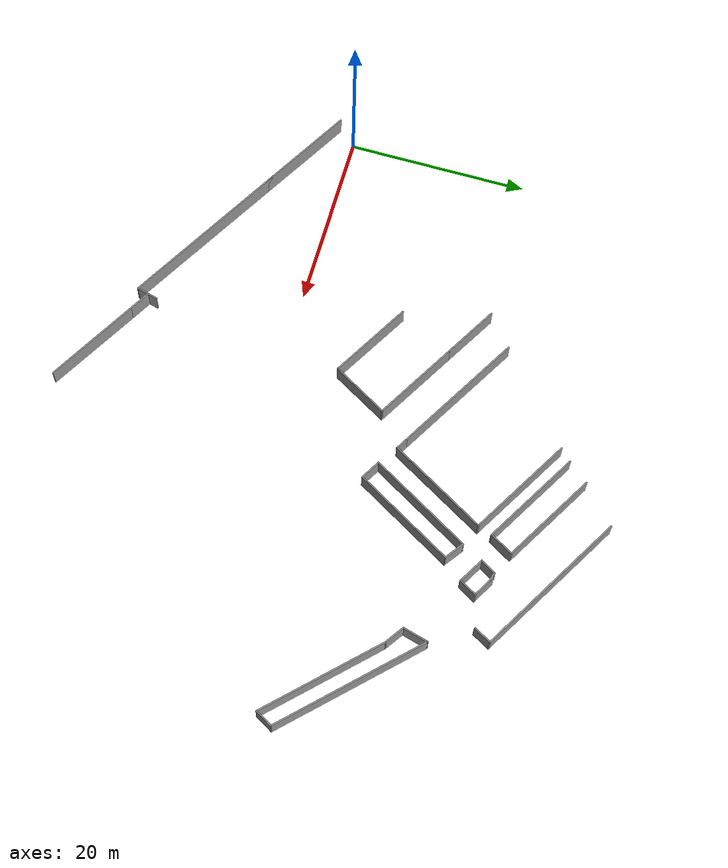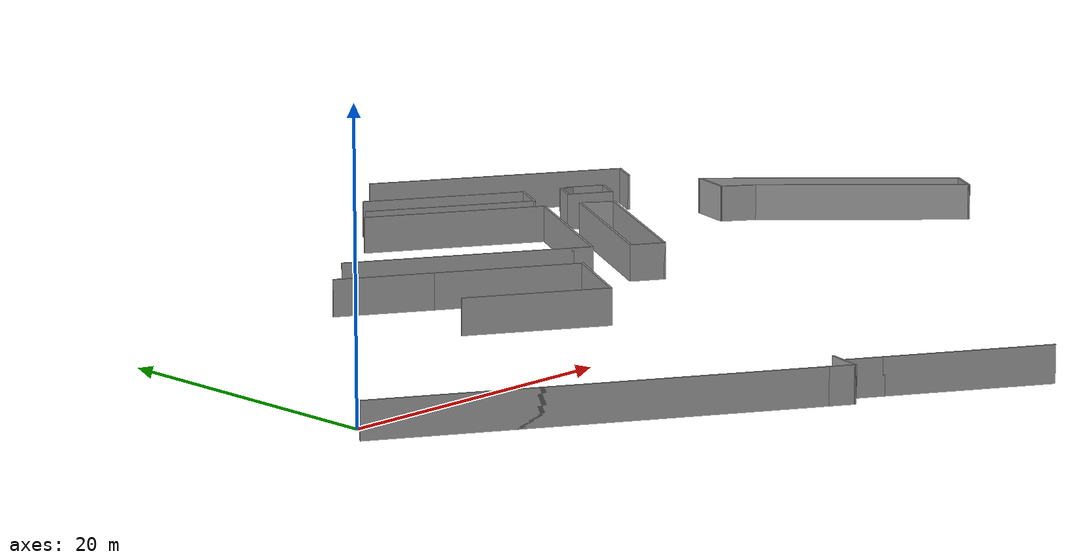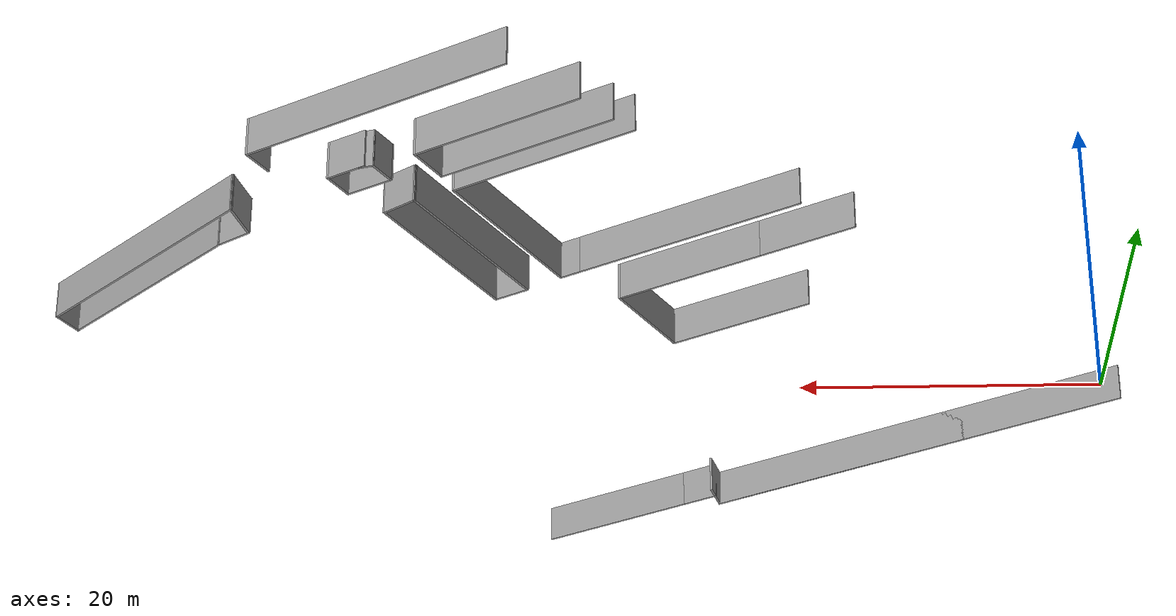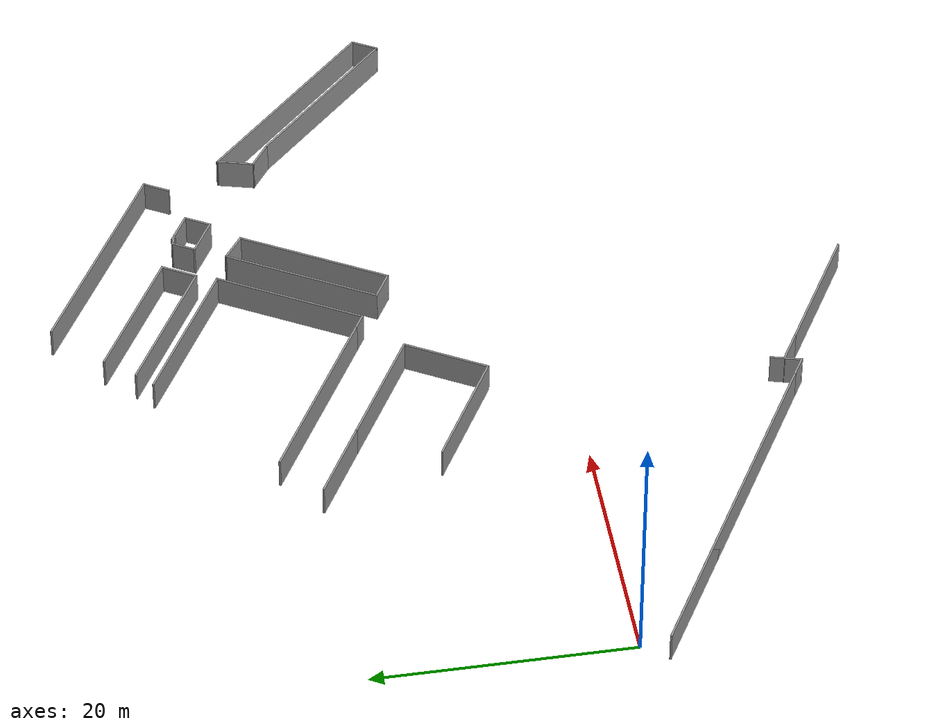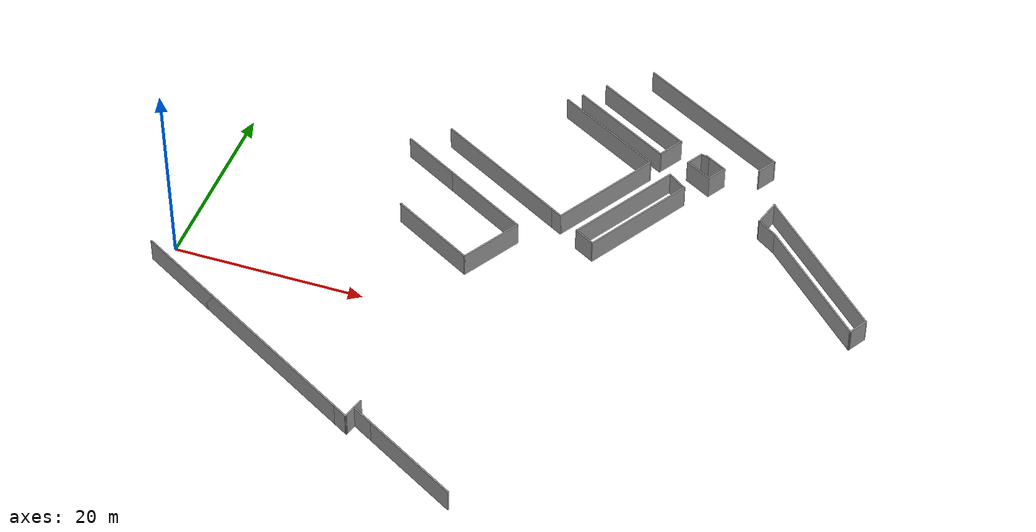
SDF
<?xml version='1.0'?>
<sdf version='1.6'>
  <model name='CS2'>
    <pose frame=''>33.1842 7.91555 0 0 -0 0</pose>
    <link name='Wall_101'>
      <collision name='Wall_101_Collision'>
        <geometry>
          <box>
            <size>11.25 0.15 2.5</size>
          </box>
        </geometry>
        <pose frame=''>0 0 1.25 0 -0 0</pose>
      </collision>
      <visual name='Wall_101_Visual'>
        <pose frame=''>0 0 1.25 0 -0 0</pose>
        <geometry>
          <box>
            <size>11.25 0.15 2.5</size>
          </box>
        </geometry>
        <material>
          <script>
            <uri>file://media/materials/scripts/gazebo.material</uri>
            <name>Gazebo/Grey</name>
          </script>
          <ambient>1 1 1 1</ambient>
        </material>
        <meta>
          <layer>0</layer>
        </meta>
      </visual>
      <pose frame=''>-0.55685 -28.1163 0 0 -0 -0.523599</pose>
    </link>
    <link name='Wall_103'>
      <collision name='Wall_103_Collision'>
        <geometry>
          <box>
            <size>2.75 0.15 2.5</size>
          </box>
        </geometry>
        <pose frame=''>0 0 1.25 0 -0 0</pose>
      </collision>
      <visual name='Wall_103_Visual'>
        <pose frame=''>0 0 1.25 0 -0 0</pose>
        <geometry>
          <box>
            <size>2.75 0.15 2.5</size>
          </box>
        </geometry>
        <material>
          <script>
            <uri>file://media/materials/scripts/gazebo.material</uri>
            <name>Gazebo/Grey</name>
          </script>
          <ambient>1 1 1 1</ambient>
        </material>
        <meta>
          <layer>0</layer>
        </meta>
      </visual>
      <pose frame=''>-6.48913 -24.6913 0 0 -0 2.61799</pose>
    </link>
    <link name='Wall_108'>
      <collision name='Wall_108_Collision'>
        <geometry>
          <box>
            <size>29.25 0.15 2.5</size>
          </box>
        </geometry>
        <pose frame=''>0 0 1.25 0 -0 0</pose>
      </collision>
      <visual name='Wall_108_Visual'>
        <pose frame=''>0 0 1.25 0 -0 0</pose>
        <geometry>
          <box>
            <size>29.25 0.15 2.5</size>
          </box>
        </geometry>
        <material>
          <script>
            <uri>file://media/materials/scripts/gazebo.material</uri>
            <name>Gazebo/Grey</name>
          </script>
          <ambient>1 1 1 1</ambient>
        </material>
        <meta>
          <layer>0</layer>
        </meta>
      </visual>
      <pose frame=''>-22.0792 -17.1668 0 0 -0 2.61799</pose>
    </link>
    <link name='Wall_109'>
      <collision name='Wall_109_Collision'>
        <geometry>
          <box>
            <size>31 0.15 2.5</size>
          </box>
        </geometry>
        <pose frame=''>0 0 1.25 0 -0 0</pose>
      </collision>
      <visual name='Wall_109_Visual'>
        <pose frame=''>0 0 1.25 0 -0 0</pose>
        <geometry>
          <box>
            <size>31 0.15 2.5</size>
          </box>
        </geometry>
        <material>
          <script>
            <uri>file://media/materials/scripts/gazebo.material</uri>
            <name>Gazebo/Grey</name>
          </script>
          <ambient>1 1 1 1</ambient>
        </material>
        <meta>
          <layer>0</layer>
        </meta>
      </visual>
      <pose frame=''>-21.3214 -17.6043 0 0 -0 -0.523599</pose>
    </link>
    <link name='Wall_110'>
      <collision name='Wall_110_Collision'>
        <geometry>
          <box>
            <size>2.5 0.15 2.5</size>
          </box>
        </geometry>
        <pose frame=''>0 0 1.25 0 -0 0</pose>
      </collision>
      <visual name='Wall_110_Visual'>
        <pose frame=''>0 0 1.25 0 -0 0</pose>
        <geometry>
          <box>
            <size>2.5 0.15 2.5</size>
          </box>
        </geometry>
        <material>
          <script>
            <uri>file://media/materials/scripts/gazebo.material</uri>
            <name>Gazebo/Grey</name>
          </script>
          <ambient>1 1 1 1</ambient>
        </material>
        <meta>
          <layer>0</layer>
        </meta>
      </visual>
      <pose frame=''>-7.65887 -24.1819 0 0 -0 1.309</pose>
    </link>
    <link name='Wall_114'>
      <collision name='Wall_114_Collision'>
        <geometry>
          <box>
            <size>18.25 0.15 2.5</size>
          </box>
        </geometry>
        <pose frame=''>0 0 1.25 0 -0 0</pose>
      </collision>
      <visual name='Wall_114_Visual'>
        <pose frame=''>0 0 1.25 0 -0 0</pose>
        <geometry>
          <box>
            <size>18.25 0.15 2.5</size>
          </box>
        </geometry>
        <material>
          <script>
            <uri>file://media/materials/scripts/gazebo.material</uri>
            <name>Gazebo/Grey</name>
          </script>
          <ambient>1 1 1 1</ambient>
        </material>
        <meta>
          <layer>0</layer>
        </meta>
      </visual>
      <pose frame=''>12.3099 26.3663 0 0 -0 -0.523599</pose>
    </link>
    <link name='Wall_115'>
      <collision name='Wall_115_Collision'>
        <geometry>
          <box>
            <size>2.25 0.15 2.5</size>
          </box>
        </geometry>
        <pose frame=''>0 0 1.25 0 -0 0</pose>
      </collision>
      <visual name='Wall_115_Visual'>
        <pose frame=''>0 0 1.25 0 -0 0</pose>
        <geometry>
          <box>
            <size>2.25 0.15 2.5</size>
          </box>
        </geometry>
        <material>
          <script>
            <uri>file://media/materials/scripts/gazebo.material</uri>
            <name>Gazebo/Grey</name>
          </script>
          <ambient>1 1 1 1</ambient>
        </material>
        <meta>
          <layer>0</layer>
        </meta>
      </visual>
      <pose frame=''>19.6224 20.932 0 0 -0 -2.0944</pose>
    </link>
    <link name='Wall_119'>
      <collision name='Wall_119_Collision'>
        <geometry>
          <box>
            <size>15 0.15 2.5</size>
          </box>
        </geometry>
        <pose frame=''>0 0 1.25 0 -0 0</pose>
      </collision>
      <visual name='Wall_119_Visual'>
        <pose frame=''>0 0 1.25 0 -0 0</pose>
        <geometry>
          <box>
            <size>15 0.15 2.5</size>
          </box>
        </geometry>
        <material>
          <script>
            <uri>file://media/materials/scripts/gazebo.material</uri>
            <name>Gazebo/Grey</name>
          </script>
          <ambient>1 1 1 1</ambient>
        </material>
        <meta>
          <layer>0</layer>
        </meta>
      </visual>
      <pose frame=''>28.376 6.36069 0 0 -0 -0.785398</pose>
    </link>
    <link name='Wall_120'>
      <collision name='Wall_120_Collision'>
        <geometry>
          <box>
            <size>2.25 0.15 2.5</size>
          </box>
        </geometry>
        <pose frame=''>0 0 1.25 0 -0 0</pose>
      </collision>
      <visual name='Wall_120_Visual'>
        <pose frame=''>0 0 1.25 0 -0 0</pose>
        <geometry>
          <box>
            <size>2.25 0.15 2.5</size>
          </box>
        </geometry>
        <material>
          <script>
            <uri>file://media/materials/scripts/gazebo.material</uri>
            <name>Gazebo/Grey</name>
          </script>
          <ambient>1 1 1 1</ambient>
        </material>
        <meta>
          <layer>0</layer>
        </meta>
      </visual>
      <pose frame=''>34.1513 2.01974 0 0 -0 1.0472</pose>
    </link>
    <link name='Wall_121'>
      <collision name='Wall_121_Collision'>
        <geometry>
          <box>
            <size>18.25 0.15 2.5</size>
          </box>
        </geometry>
        <pose frame=''>0 0 1.25 0 -0 0</pose>
      </collision>
      <visual name='Wall_121_Visual'>
        <pose frame=''>0 0 1.25 0 -0 0</pose>
        <geometry>
          <box>
            <size>18.25 0.15 2.5</size>
          </box>
        </geometry>
        <material>
          <script>
            <uri>file://media/materials/scripts/gazebo.material</uri>
            <name>Gazebo/Grey</name>
          </script>
          <ambient>1 1 1 1</ambient>
        </material>
        <meta>
          <layer>0</layer>
        </meta>
      </visual>
      <pose frame=''>28.2769 9.32839 0 0 -0 2.35619</pose>
    </link>
    <link name='Wall_122'>
      <collision name='Wall_122_Collision'>
        <geometry>
          <box>
            <size>3 0.15 2.5</size>
          </box>
        </geometry>
        <pose frame=''>0 0 1.25 0 -0 0</pose>
      </collision>
      <visual name='Wall_122_Visual'>
        <pose frame=''>0 0 1.25 0 -0 0</pose>
        <geometry>
          <box>
            <size>3 0.15 2.5</size>
          </box>
        </geometry>
        <material>
          <script>
            <uri>file://media/materials/scripts/gazebo.material</uri>
            <name>Gazebo/Grey</name>
          </script>
          <ambient>1 1 1 1</ambient>
        </material>
        <meta>
          <layer>0</layer>
        </meta>
      </visual>
      <pose frame=''>21.5088 14.3513 0 0 -0 -1.8326</pose>
    </link>
    <link name='Wall_123'>
      <collision name='Wall_123_Collision'>
        <geometry>
          <box>
            <size>2.55899 0.15 2.5</size>
          </box>
        </geometry>
        <pose frame=''>0 0 1.25 0 -0 0</pose>
      </collision>
      <visual name='Wall_123_Visual'>
        <pose frame=''>0 0 1.25 0 -0 0</pose>
        <geometry>
          <box>
            <size>2.55899 0.15 2.5</size>
          </box>
        </geometry>
        <material>
          <script>
            <uri>file://media/materials/scripts/gazebo.material</uri>
            <name>Gazebo/Grey</name>
          </script>
          <ambient>1 1 1 1</ambient>
        </material>
        <meta>
          <layer>0</layer>
        </meta>
      </visual>
      <pose frame=''>22.1329 12.2929 0 0 -0 -0.601833</pose>
    </link>
    <link name='Wall_65'>
      <collision name='Wall_65_Collision'>
        <geometry>
          <box>
            <size>10 0.15 2.5</size>
          </box>
        </geometry>
        <pose frame=''>0 0 1.25 0 -0 0</pose>
      </collision>
      <visual name='Wall_65_Visual'>
        <pose frame=''>0 0 1.25 0 -0 0</pose>
        <geometry>
          <box>
            <size>10 0.15 2.5</size>
          </box>
        </geometry>
        <material>
          <script>
            <uri>file://media/materials/scripts/gazebo.material</uri>
            <name>Gazebo/Grey</name>
          </script>
          <ambient>1 1 1 1</ambient>
        </material>
        <meta>
          <layer>0</layer>
        </meta>
      </visual>
      <pose frame=''>-9.08424 0.921832 0 0 -0 -0.523599</pose>
    </link>
    <link name='Wall_66'>
      <collision name='Wall_66_Collision'>
        <geometry>
          <box>
            <size>7 0.15 2.5</size>
          </box>
        </geometry>
        <pose frame=''>0 0 1.25 0 -0 0</pose>
      </collision>
      <visual name='Wall_66_Visual'>
        <pose frame=''>0 0 1.25 0 -0 0</pose>
        <geometry>
          <box>
            <size>7 0.15 2.5</size>
          </box>
        </geometry>
        <material>
          <script>
            <uri>file://media/materials/scripts/gazebo.material</uri>
            <name>Gazebo/Grey</name>
          </script>
          <ambient>1 1 1 1</ambient>
        </material>
        <meta>
          <layer>0</layer>
        </meta>
      </visual>
      <pose frame=''>-3.10657 1.42547 0 0 -0 1.0472</pose>
    </link>
    <link name='Wall_67'>
      <collision name='Wall_67_Collision'>
        <geometry>
          <box>
            <size>10.25 0.15 2.5</size>
          </box>
        </geometry>
        <pose frame=''>0 0 1.25 0 -0 0</pose>
      </collision>
      <visual name='Wall_67_Visual'>
        <pose frame=''>0 0 1.25 0 -0 0</pose>
        <geometry>
          <box>
            <size>10.25 0.15 2.5</size>
          </box>
        </geometry>
        <material>
          <script>
            <uri>file://media/materials/scripts/gazebo.material</uri>
            <name>Gazebo/Grey</name>
          </script>
          <ambient>1 1 1 1</ambient>
        </material>
        <meta>
          <layer>0</layer>
        </meta>
      </visual>
      <pose frame=''>-5.7675 6.91661 0 0 -0 2.61799</pose>
    </link>
    <link name='Wall_68'>
      <collision name='Wall_68_Collision'>
        <geometry>
          <box>
            <size>6.75 0.15 2.5</size>
          </box>
        </geometry>
        <pose frame=''>0 0 1.25 0 -0 0</pose>
      </collision>
      <visual name='Wall_68_Visual'>
        <pose frame=''>0 0 1.25 0 -0 0</pose>
        <geometry>
          <box>
            <size>6.75 0.15 2.5</size>
          </box>
        </geometry>
        <material>
          <script>
            <uri>file://media/materials/scripts/gazebo.material</uri>
            <name>Gazebo/Grey</name>
          </script>
          <ambient>1 1 1 1</ambient>
        </material>
        <meta>
          <layer>0</layer>
        </meta>
      </visual>
      <pose frame=''>-12.9988 11.0916 0 0 -0 2.61799</pose>
    </link>
    <link name='Wall_72'>
      <collision name='Wall_72_Collision'>
        <geometry>
          <box>
            <size>15.75 0.15 2.5</size>
          </box>
        </geometry>
        <pose frame=''>0 0 1.25 0 -0 0</pose>
      </collision>
      <visual name='Wall_72_Visual'>
        <pose frame=''>0 0 1.25 0 -0 0</pose>
        <geometry>
          <box>
            <size>15.75 0.15 2.5</size>
          </box>
        </geometry>
        <material>
          <script>
            <uri>file://media/materials/scripts/gazebo.material</uri>
            <name>Gazebo/Grey</name>
          </script>
          <ambient>1 1 1 1</ambient>
        </material>
        <meta>
          <layer>0</layer>
        </meta>
      </visual>
      <pose frame=''>-5.68498 11.6548 0 0 -0 -0.523599</pose>
    </link>
    <link name='Wall_73'>
      <collision name='Wall_73_Collision'>
        <geometry>
          <box>
            <size>1.5 0.15 2.5</size>
          </box>
        </geometry>
        <pose frame=''>0 0 1.25 0 -0 0</pose>
      </collision>
      <visual name='Wall_73_Visual'>
        <pose frame=''>0 0 1.25 0 -0 0</pose>
        <geometry>
          <box>
            <size>1.5 0.15 2.5</size>
          </box>
        </geometry>
        <material>
          <script>
            <uri>file://media/materials/scripts/gazebo.material</uri>
            <name>Gazebo/Grey</name>
          </script>
          <ambient>1 1 1 1</ambient>
        </material>
        <meta>
          <layer>0</layer>
        </meta>
      </visual>
      <pose frame=''>1.65459 7.41732 0 0 -0 -0.523599</pose>
    </link>
    <link name='Wall_74'>
      <collision name='Wall_74_Collision'>
        <geometry>
          <box>
            <size>12.25 0.15 2.5</size>
          </box>
        </geometry>
        <pose frame=''>0 0 1.25 0 -0 0</pose>
      </collision>
      <visual name='Wall_74_Visual'>
        <pose frame=''>0 0 1.25 0 -0 0</pose>
        <geometry>
          <box>
            <size>12.25 0.15 2.5</size>
          </box>
        </geometry>
        <material>
          <script>
            <uri>file://media/materials/scripts/gazebo.material</uri>
            <name>Gazebo/Grey</name>
          </script>
          <ambient>1 1 1 1</ambient>
        </material>
        <meta>
          <layer>0</layer>
        </meta>
      </visual>
      <pose frame=''>5.26416 12.3193 0 0 -0 1.0472</pose>
    </link>
    <link name='Wall_75'>
      <collision name='Wall_75_Collision'>
        <geometry>
          <box>
            <size>12.75 0.15 2.5</size>
          </box>
        </geometry>
        <pose frame=''>0 0 1.25 0 -0 0</pose>
      </collision>
      <visual name='Wall_75_Visual'>
        <pose frame=''>0 0 1.25 0 -0 0</pose>
        <geometry>
          <box>
            <size>12.75 0.15 2.5</size>
          </box>
        </geometry>
        <material>
          <script>
            <uri>file://media/materials/scripts/gazebo.material</uri>
            <name>Gazebo/Grey</name>
          </script>
          <ambient>1 1 1 1</ambient>
        </material>
        <meta>
          <layer>0</layer>
        </meta>
      </visual>
      <pose frame=''>2.83319 20.7087 0 0 -0 2.61799</pose>
    </link>
    <link name='Wall_78'>
      <collision name='Wall_78_Collision'>
        <geometry>
          <box>
            <size>12 0.15 2.5</size>
          </box>
        </geometry>
        <pose frame=''>0 0 1.25 0 -0 0</pose>
      </collision>
      <visual name='Wall_78_Visual'>
        <pose frame=''>0 0 1.25 0 -0 0</pose>
        <geometry>
          <box>
            <size>12 0.15 2.5</size>
          </box>
        </geometry>
        <material>
          <script>
            <uri>file://media/materials/scripts/gazebo.material</uri>
            <name>Gazebo/Grey</name>
          </script>
          <ambient>1 1 1 1</ambient>
        </material>
        <meta>
          <layer>0</layer>
        </meta>
      </visual>
      <pose frame=''>3.73934 22.1022 0 0 -0 -0.523599</pose>
    </link>
    <link name='Wall_79'>
      <collision name='Wall_79_Collision'>
        <geometry>
          <box>
            <size>3 0.15 2.5</size>
          </box>
        </geometry>
        <pose frame=''>0 0 1.25 0 -0 0</pose>
      </collision>
      <visual name='Wall_79_Visual'>
        <pose frame=''>0 0 1.25 0 -0 0</pose>
        <geometry>
          <box>
            <size>3 0.15 2.5</size>
          </box>
        </geometry>
        <material>
          <script>
            <uri>file://media/materials/scripts/gazebo.material</uri>
            <name>Gazebo/Grey</name>
          </script>
          <ambient>1 1 1 1</ambient>
        </material>
        <meta>
          <layer>0</layer>
        </meta>
      </visual>
      <pose frame=''>9.58304 20.3738 0 0 -0 1.0472</pose>
    </link>
    <link name='Wall_80'>
      <collision name='Wall_80_Collision'>
        <geometry>
          <box>
            <size>11.5 0.15 2.5</size>
          </box>
        </geometry>
        <pose frame=''>0 0 1.25 0 -0 0</pose>
      </collision>
      <visual name='Wall_80_Visual'>
        <pose frame=''>0 0 1.25 0 -0 0</pose>
        <geometry>
          <box>
            <size>11.5 0.15 2.5</size>
          </box>
        </geometry>
        <material>
          <script>
            <uri>file://media/materials/scripts/gazebo.material</uri>
            <name>Gazebo/Grey</name>
          </script>
          <ambient>1 1 1 1</ambient>
        </material>
        <meta>
          <layer>0</layer>
        </meta>
      </visual>
      <pose frame=''>5.38084 24.4454 0 0 -0 2.61799</pose>
    </link>
    <link name='Wall_82'>
      <collision name='Wall_82_Collision'>
        <geometry>
          <box>
            <size>2.75 0.15 2.5</size>
          </box>
        </geometry>
        <pose frame=''>0 0 1.25 0 -0 0</pose>
      </collision>
      <visual name='Wall_82_Visual'>
        <pose frame=''>0 0 1.25 0 -0 0</pose>
        <geometry>
          <box>
            <size>2.75 0.15 2.5</size>
          </box>
        </geometry>
        <material>
          <script>
            <uri>file://media/materials/scripts/gazebo.material</uri>
            <name>Gazebo/Grey</name>
          </script>
          <ambient>1 1 1 1</ambient>
        </material>
        <meta>
          <layer>0</layer>
        </meta>
      </visual>
      <pose frame=''>14.527 19.7737 0 0 -0 -0.523599</pose>
    </link>
    <link name='Wall_83'>
      <collision name='Wall_83_Collision'>
        <geometry>
          <box>
            <size>2.25 0.15 2.5</size>
          </box>
        </geometry>
        <pose frame=''>0 0 1.25 0 -0 0</pose>
      </collision>
      <visual name='Wall_83_Visual'>
        <pose frame=''>0 0 1.25 0 -0 0</pose>
        <geometry>
          <box>
            <size>2.25 0.15 2.5</size>
          </box>
        </geometry>
        <material>
          <script>
            <uri>file://media/materials/scripts/gazebo.material</uri>
            <name>Gazebo/Grey</name>
          </script>
          <ambient>1 1 1 1</ambient>
        </material>
        <meta>
          <layer>0</layer>
        </meta>
      </visual>
      <pose frame=''>15.1279 18.2144 0 0 -0 -2.0944</pose>
    </link>
    <link name='Wall_87'>
      <collision name='Wall_87_Collision'>
        <geometry>
          <box>
            <size>3.25 0.15 2.5</size>
          </box>
        </geometry>
        <pose frame=''>0 0 1.25 0 -0 0</pose>
      </collision>
      <visual name='Wall_87_Visual'>
        <pose frame=''>0 0 1.25 0 -0 0</pose>
        <geometry>
          <box>
            <size>3.25 0.15 2.5</size>
          </box>
        </geometry>
        <material>
          <script>
            <uri>file://media/materials/scripts/gazebo.material</uri>
            <name>Gazebo/Grey</name>
          </script>
          <ambient>1 1 1 1</ambient>
        </material>
        <meta>
          <layer>0</layer>
        </meta>
      </visual>
      <pose frame=''>13.2605 18.0801 0 0 -0 2.61799</pose>
    </link>
    <link name='Wall_88'>
      <collision name='Wall_88_Collision'>
        <geometry>
          <box>
            <size>2 0.15 2.5</size>
          </box>
        </geometry>
        <pose frame=''>0 0 1.25 0 -0 0</pose>
      </collision>
      <visual name='Wall_88_Visual'>
        <pose frame=''>0 0 1.25 0 -0 0</pose>
        <geometry>
          <box>
            <size>2 0.15 2.5</size>
          </box>
        </geometry>
        <material>
          <script>
            <uri>file://media/materials/scripts/gazebo.material</uri>
            <name>Gazebo/Grey</name>
          </script>
          <ambient>1 1 1 1</ambient>
        </material>
        <meta>
          <layer>0</layer>
        </meta>
      </visual>
      <pose frame=''>12.3807 19.6562 0 0 -0 1.0472</pose>
    </link>
    <link name='Wall_89'>
      <collision name='Wall_89_Collision'>
        <geometry>
          <box>
            <size>1 0.15 2.5</size>
          </box>
        </geometry>
        <pose frame=''>0 0 1.25 0 -0 0</pose>
      </collision>
      <visual name='Wall_89_Visual'>
        <pose frame=''>0 0 1.25 0 -0 0</pose>
        <geometry>
          <box>
            <size>1 0.15 2.5</size>
          </box>
        </geometry>
        <material>
          <script>
            <uri>file://media/materials/scripts/gazebo.material</uri>
            <name>Gazebo/Grey</name>
          </script>
          <ambient>1 1 1 1</ambient>
        </material>
        <meta>
          <layer>0</layer>
        </meta>
      </visual>
      <pose frame=''>13.2537 20.3472 0 0 -0 -0.261799</pose>
    </link>
    <link name='Wall_92'>
      <collision name='Wall_92_Collision'>
        <geometry>
          <box>
            <size>12.75 0.15 2.5</size>
          </box>
        </geometry>
        <pose frame=''>0 0 1.25 0 -0 0</pose>
      </collision>
      <visual name='Wall_92_Visual'>
        <pose frame=''>0 0 1.25 0 -0 0</pose>
        <geometry>
          <box>
            <size>12.75 0.15 2.5</size>
          </box>
        </geometry>
        <material>
          <script>
            <uri>file://media/materials/scripts/gazebo.material</uri>
            <name>Gazebo/Grey</name>
          </script>
          <ambient>1 1 1 1</ambient>
        </material>
        <meta>
          <layer>0</layer>
        </meta>
      </visual>
      <pose frame=''>7.56783 11.0753 0 0 -0 -2.0944</pose>
    </link>
    <link name='Wall_93'>
      <collision name='Wall_93_Collision'>
        <geometry>
          <box>
            <size>2.5 0.15 2.5</size>
          </box>
        </geometry>
        <pose frame=''>0 0 1.25 0 -0 0</pose>
      </collision>
      <visual name='Wall_93_Visual'>
        <pose frame=''>0 0 1.25 0 -0 0</pose>
        <geometry>
          <box>
            <size>2.5 0.15 2.5</size>
          </box>
        </geometry>
        <material>
          <script>
            <uri>file://media/materials/scripts/gazebo.material</uri>
            <name>Gazebo/Grey</name>
          </script>
          <ambient>1 1 1 1</ambient>
        </material>
        <meta>
          <layer>0</layer>
        </meta>
      </visual>
      <pose frame=''>5.43541 5.03183 0 0 -0 -0.523599</pose>
    </link>
    <link name='Wall_94'>
      <collision name='Wall_94_Collision'>
        <geometry>
          <box>
            <size>12.5 0.15 2.5</size>
          </box>
        </geometry>
        <pose frame=''>0 0 1.25 0 -0 0</pose>
      </collision>
      <visual name='Wall_94_Visual'>
        <pose frame=''>0 0 1.25 0 -0 0</pose>
        <geometry>
          <box>
            <size>12.5 0.15 2.5</size>
          </box>
        </geometry>
        <material>
          <script>
            <uri>file://media/materials/scripts/gazebo.material</uri>
            <name>Gazebo/Grey</name>
          </script>
          <ambient>1 1 1 1</ambient>
        </material>
        <meta>
          <layer>0</layer>
        </meta>
      </visual>
      <pose frame=''>9.54049 9.79204 0 0 -0 1.0472</pose>
    </link>
    <link name='Wall_95'>
      <collision name='Wall_95_Collision'>
        <geometry>
          <box>
            <size>2.51326 0.15 2.5</size>
          </box>
        </geometry>
        <pose frame=''>0 0 1.25 0 -0 0</pose>
      </collision>
      <visual name='Wall_95_Visual'>
        <pose frame=''>0 0 1.25 0 -0 0</pose>
        <geometry>
          <box>
            <size>2.51326 0.15 2.5</size>
          </box>
        </geometry>
        <material>
          <script>
            <uri>file://media/materials/scripts/gazebo.material</uri>
            <name>Gazebo/Grey</name>
          </script>
          <ambient>1 1 1 1</ambient>
        </material>
        <meta>
          <layer>0</layer>
        </meta>
      </visual>
      <pose frame=''>11.6729 15.8355 0 0 -0 2.51201</pose>
    </link>
    <static>1</static>
  </model>
</sdf>
